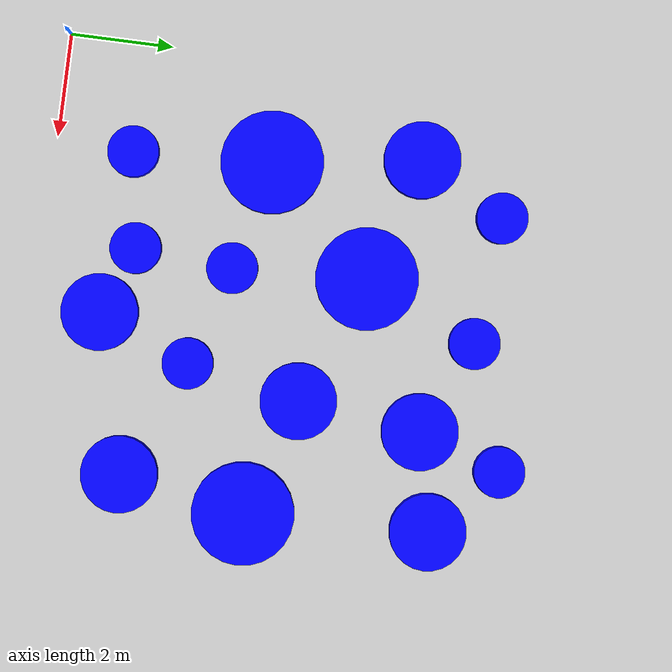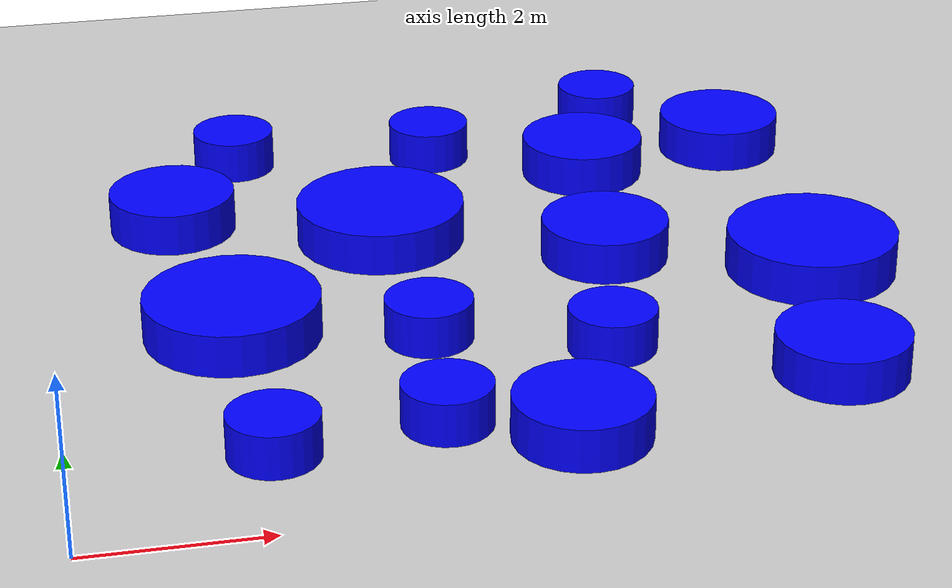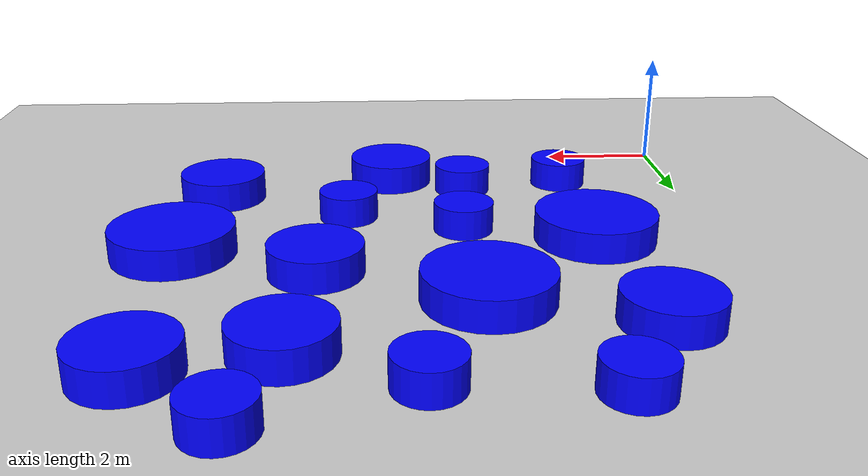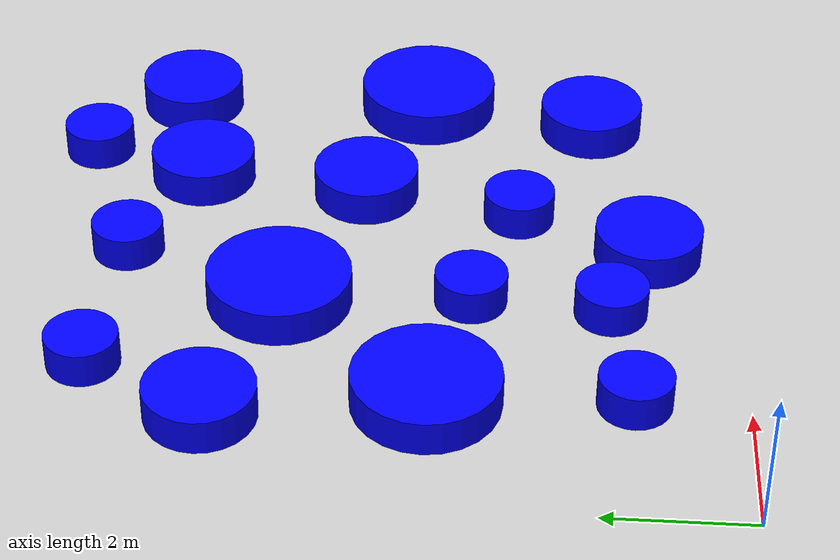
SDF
<sdf version="1.6">
 <world name="default">
  <light name="sun" type="directional">
   <pose>0 0 10 0 -0 0</pose>
   <diffuse>0.8 0.8 0.8 1</diffuse>
   <specular>0.2 0.2 0.2 1</specular>
   <attenuation>
    <range>1000</range>
    <constant>0.9</constant>
    <linear>0.01</linear>
    <quadratic>0.001</quadratic>
   </attenuation>
   <direction>-0.5 0.1 -0.9</direction>
  </light>
  <model name="ground_plane">
   <static>1</static>
   <link name="link">
    <collision name="collision">
     <geometry><plane><normal>0 0 1</normal><size>100 100</size></plane></geometry>
     <surface>
      <contact><collide_bitmask>65535</collide_bitmask></contact>
      <friction><ode><mu>100</mu><mu2>50</mu2></ode></friction>
     </surface>
    </collision>
    <visual name="visual">
     <cast_shadows>0</cast_shadows>
     <geometry><plane><normal>0 0 1</normal><size>100 100</size></plane></geometry>
     <material>
      <script><uri>file://media/materials/scripts/gazebo.material</uri><name>Gazebo/Grey</name></script>
     </material>
    </visual>
   </link>
  </model>
  <gravity>0 0 -9.8</gravity>
  <magnetic_field>6e-06 2.3e-05 -4.2e-05</magnetic_field>
  <atmosphere type="adiabatic"/>
  <physics name="default_physics" default="0" type="ode">
   <max_step_size>0.001</max_step_size>
   <real_time_factor>1</real_time_factor>
   <real_time_update_rate>1000</real_time_update_rate>
  </physics>
  <scene><ambient>0.4 0.4 0.4 1</ambient><background>0.7 0.7 0.7 1</background><shadows>1</shadows></scene>
  <audio><device>default</device></audio>
  <spherical_coordinates>
   <surface_model>EARTH_WGS84</surface_model>
   <latitude_deg>0</latitude_deg>
   <longitude_deg>0</longitude_deg>
   <elevation>0</elevation>
   <heading_deg>0</heading_deg>
  </spherical_coordinates>
  <model name="kwn_obs100">
   <link name="link">
    <inertial>
     <mass>1</mass>
     <inertia><ixx>0.145833</ixx><ixy>0</ixy><ixz>0</ixz><iyy>0.145833</iyy><iyz>0</iyz><izz>0.125</izz></inertia>
    </inertial>
    <visual name="visual">
     <geometry><cylinder><radius>1</radius><length>0.5</length></cylinder></geometry>
     <material>
      <script><name>Gazebo/Grey</name><uri>file://media/materials/scripts/gazebo.material</uri></script>
      <shader type="vertex"><normal_map>__default__</normal_map></shader>
      <ambient>0 0 1 1</ambient>
      <diffuse>0.7 0.7 0.7 1</diffuse>
      <specular>0.01 0.01 0.01 1</specular>
      <emissive>0 0 0 1</emissive>
     </material>
     <pose>0 0 0.25 0 -0 0</pose>
    </visual>
    <collision name="collision">
     <pose>0 0 0.25 0 -0 0</pose>
     <geometry><cylinder><radius>1</radius><length>0.5</length></cylinder></geometry>
     <surface>
      <friction>
       <ode><mu>1</mu><mu2>1</mu2><fdir1>0 0 0</fdir1><slip1>0</slip1><slip2>0</slip2></ode>
       <torsional>
        <coefficient>1</coefficient>
        <patch_radius>0</patch_radius>
        <surface_radius>0</surface_radius>
        <use_patch_radius>1</use_patch_radius>
        <ode><slip>0</slip></ode>
       </torsional>
      </friction>
      <bounce><restitution_coefficient>0</restitution_coefficient><threshold>1e+06</threshold></bounce>
      <contact>
       <collide_without_contact>0</collide_without_contact>
       <collide_without_contact_bitmask>1</collide_without_contact_bitmask>
       <collide_bitmask>1</collide_bitmask>
       <ode>
        <soft_cfm>0</soft_cfm>
        <soft_erp>0.2</soft_erp>
        <kp>1e+13</kp>
        <kd>1</kd>
        <max_vel>0.01</max_vel>
        <min_depth>0</min_depth>
       </ode>
       <bullet>
        <split_impulse>1</split_impulse>
        <split_impulse_penetration_threshold>-0.01</split_impulse_penetration_threshold>
        <soft_cfm>0</soft_cfm>
        <soft_erp>0.2</soft_erp>
        <kp>1e+13</kp>
        <kd>1</kd>
       </bullet>
      </contact>
     </surface>
    </collision>
   </link>
   <static>1</static>
   <pose>1.98249 4.19894 0 0 -0 0</pose>
  </model>
  <model name="kwn_obs75">
   <link name="link">
    <inertial>
     <mass>1</mass>
     <inertia><ixx>0.145833</ixx><ixy>0</ixy><ixz>0</ixz><iyy>0.145833</iyy><iyz>0</iyz><izz>0.125</izz></inertia>
    </inertial>
    <visual name="visual">
     <geometry><cylinder><radius>0.75</radius><length>0.5</length></cylinder></geometry>
     <material>
      <script><name>Gazebo/Grey</name><uri>file://media/materials/scripts/gazebo.material</uri></script>
      <shader type="vertex"><normal_map>__default__</normal_map></shader>
      <ambient>0 0 1 1</ambient>
      <diffuse>0.7 0.7 0.7 1</diffuse>
      <specular>0.01 0.01 0.01 1</specular>
      <emissive>0 0 0 1</emissive>
     </material>
     <pose>0 0 0.25 0 -0 0</pose>
    </visual>
    <collision name="collision">
     <pose>0 0 0.25 0 -0 0</pose>
     <geometry><cylinder><radius>0.75</radius><length>0.5</length></cylinder></geometry>
     <surface>
      <friction>
       <ode><mu>1</mu><mu2>1</mu2><fdir1>0 0 0</fdir1><slip1>0</slip1><slip2>0</slip2></ode>
       <torsional>
        <coefficient>1</coefficient>
        <patch_radius>0</patch_radius>
        <surface_radius>0</surface_radius>
        <use_patch_radius>1</use_patch_radius>
        <ode><slip>0</slip></ode>
       </torsional>
      </friction>
      <bounce><restitution_coefficient>0</restitution_coefficient><threshold>1e+06</threshold></bounce>
      <contact>
       <collide_without_contact>0</collide_without_contact>
       <collide_without_contact_bitmask>1</collide_without_contact_bitmask>
       <collide_bitmask>1</collide_bitmask>
       <ode>
        <soft_cfm>0</soft_cfm>
        <soft_erp>0.2</soft_erp>
        <kp>1e+13</kp>
        <kd>1</kd>
        <max_vel>0.01</max_vel>
        <min_depth>0</min_depth>
       </ode>
       <bullet>
        <split_impulse>1</split_impulse>
        <split_impulse_penetration_threshold>-0.01</split_impulse_penetration_threshold>
        <soft_cfm>0</soft_cfm>
        <soft_erp>0.2</soft_erp>
        <kp>1e+13</kp>
        <kd>1</kd>
       </bullet>
      </contact>
     </surface>
    </collision>
   </link>
   <static>1</static>
   <pose>5.28426 1.26231 0 0 -0 0</pose>
  </model>
  <model name="kwn_obs50">
   <link name="link">
    <inertial>
     <mass>1</mass>
     <inertia><ixx>0.145833</ixx><ixy>0</ixy><ixz>0</ixz><iyy>0.145833</iyy><iyz>0</iyz><izz>0.125</izz></inertia>
    </inertial>
    <visual name="visual">
     <geometry><cylinder><radius>0.5</radius><length>0.5</length></cylinder></geometry>
     <material>
      <script><name>Gazebo/Grey</name><uri>file://media/materials/scripts/gazebo.material</uri></script>
      <shader type="vertex"><normal_map>__default__</normal_map></shader>
      <ambient>0 0 1 1</ambient>
      <diffuse>0.7 0.7 0.7 1</diffuse>
      <specular>0.01 0.01 0.01 1</specular>
      <emissive>0 0 0 1</emissive>
     </material>
     <pose>0 0 0.25 0 -0 0</pose>
    </visual>
    <collision name="collision">
     <pose>0 0 0.25 0 -0 0</pose>
     <geometry><cylinder><radius>0.5</radius><length>0.5</length></cylinder></geometry>
     <surface>
      <friction>
       <ode><mu>1</mu><mu2>1</mu2><fdir1>0 0 0</fdir1><slip1>0</slip1><slip2>0</slip2></ode>
       <torsional>
        <coefficient>1</coefficient>
        <patch_radius>0</patch_radius>
        <surface_radius>0</surface_radius>
        <use_patch_radius>1</use_patch_radius>
        <ode><slip>0</slip></ode>
       </torsional>
      </friction>
      <bounce><restitution_coefficient>0</restitution_coefficient><threshold>1e+06</threshold></bounce>
      <contact>
       <collide_without_contact>0</collide_without_contact>
       <collide_without_contact_bitmask>1</collide_without_contact_bitmask>
       <collide_bitmask>1</collide_bitmask>
       <ode>
        <soft_cfm>0</soft_cfm>
        <soft_erp>0.2</soft_erp>
        <kp>1e+13</kp>
        <kd>1</kd>
        <max_vel>0.01</max_vel>
        <min_depth>0</min_depth>
       </ode>
       <bullet>
        <split_impulse>1</split_impulse>
        <split_impulse_penetration_threshold>-0.01</split_impulse_penetration_threshold>
        <soft_cfm>0</soft_cfm>
        <soft_erp>0.2</soft_erp>
        <kp>1e+13</kp>
        <kd>1</kd>
       </bullet>
      </contact>
     </surface>
    </collision>
   </link>
   <static>1</static>
   <pose>2.12006 1.50872 0 0 -0 0</pose>
  </model>
  <model name="kwn_obs50_0">
   <link name="link">
    <inertial>
     <mass>1</mass>
     <inertia><ixx>0.145833</ixx><ixy>0</ixy><ixz>0</ixz><iyy>0.145833</iyy><iyz>0</iyz><izz>0.125</izz></inertia>
    </inertial>
    <visual name="visual">
     <geometry><cylinder><radius>0.5</radius><length>0.5</length></cylinder></geometry>
     <material>
      <script><name>Gazebo/Grey</name><uri>file://media/materials/scripts/gazebo.material</uri></script>
      <shader type="vertex"><normal_map>__default__</normal_map></shader>
      <ambient>0 0 1 1</ambient>
      <diffuse>0.7 0.7 0.7 1</diffuse>
      <specular>0.01 0.01 0.01 1</specular>
      <emissive>0 0 0 1</emissive>
     </material>
     <pose>0 0 0.25 0 -0 0</pose>
    </visual>
    <collision name="collision">
     <pose>0 0 0.25 0 -0 0</pose>
     <geometry><cylinder><radius>0.5</radius><length>0.5</length></cylinder></geometry>
     <surface>
      <friction>
       <ode><mu>1</mu><mu2>1</mu2><fdir1>0 0 0</fdir1><slip1>0</slip1><slip2>0</slip2></ode>
       <torsional>
        <coefficient>1</coefficient>
        <patch_radius>0</patch_radius>
        <surface_radius>0</surface_radius>
        <use_patch_radius>1</use_patch_radius>
        <ode><slip>0</slip></ode>
       </torsional>
      </friction>
      <bounce><restitution_coefficient>0</restitution_coefficient><threshold>1e+06</threshold></bounce>
      <contact>
       <collide_without_contact>0</collide_without_contact>
       <collide_without_contact_bitmask>1</collide_without_contact_bitmask>
       <collide_bitmask>1</collide_bitmask>
       <ode>
        <soft_cfm>0</soft_cfm>
        <soft_erp>0.2</soft_erp>
        <kp>1e+13</kp>
        <kd>1</kd>
        <max_vel>0.01</max_vel>
        <min_depth>0</min_depth>
       </ode>
       <bullet>
        <split_impulse>1</split_impulse>
        <split_impulse_penetration_threshold>-0.01</split_impulse_penetration_threshold>
        <soft_cfm>0</soft_cfm>
        <soft_erp>0.2</soft_erp>
        <kp>1e+13</kp>
        <kd>1</kd>
       </bullet>
      </contact>
     </surface>
    </collision>
   </link>
   <static>1</static>
   <pose>4.10978 3.69795 0 0 -0 0</pose>
  </model>
  <model name="kwn_obs75_0">
   <link name="link">
    <inertial>
     <mass>1</mass>
     <inertia><ixx>0.145833</ixx><ixy>0</ixy><ixz>0</ixz><iyy>0.145833</iyy><iyz>0</iyz><izz>0.125</izz></inertia>
    </inertial>
    <visual name="visual">
     <geometry><cylinder><radius>0.75</radius><length>0.5</length></cylinder></geometry>
     <material>
      <script><name>Gazebo/Grey</name><uri>file://media/materials/scripts/gazebo.material</uri></script>
      <shader type="vertex"><normal_map>__default__</normal_map></shader>
      <ambient>0 0 1 1</ambient>
      <diffuse>0.7 0.7 0.7 1</diffuse>
      <specular>0.01 0.01 0.01 1</specular>
      <emissive>0 0 0 1</emissive>
     </material>
     <pose>0 0 0.25 0 -0 0</pose>
    </visual>
    <collision name="collision">
     <pose>0 0 0.25 0 -0 0</pose>
     <geometry><cylinder><radius>0.75</radius><length>0.5</length></cylinder></geometry>
     <surface>
      <friction>
       <ode><mu>1</mu><mu2>1</mu2><fdir1>0 0 0</fdir1><slip1>0</slip1><slip2>0</slip2></ode>
       <torsional>
        <coefficient>1</coefficient>
        <patch_radius>0</patch_radius>
        <surface_radius>0</surface_radius>
        <use_patch_radius>1</use_patch_radius>
        <ode><slip>0</slip></ode>
       </torsional>
      </friction>
      <bounce><restitution_coefficient>0</restitution_coefficient><threshold>1e+06</threshold></bounce>
      <contact>
       <collide_without_contact>0</collide_without_contact>
       <collide_without_contact_bitmask>1</collide_without_contact_bitmask>
       <collide_bitmask>1</collide_bitmask>
       <ode>
        <soft_cfm>0</soft_cfm>
        <soft_erp>0.2</soft_erp>
        <kp>1e+13</kp>
        <kd>1</kd>
        <max_vel>0.01</max_vel>
        <min_depth>0</min_depth>
       </ode>
       <bullet>
        <split_impulse>1</split_impulse>
        <split_impulse_penetration_threshold>-0.01</split_impulse_penetration_threshold>
        <soft_cfm>0</soft_cfm>
        <soft_erp>0.2</soft_erp>
        <kp>1e+13</kp>
        <kd>1</kd>
       </bullet>
      </contact>
     </surface>
    </collision>
   </link>
   <static>1</static>
   <pose>1.56322 7.07568 0 0 -0 0</pose>
  </model>
  <model name="kwn_obs100_0">
   <link name="link">
    <inertial>
     <mass>1</mass>
     <inertia><ixx>0.145833</ixx><ixy>0</ixy><ixz>0</ixz><iyy>0.145833</iyy><iyz>0</iyz><izz>0.125</izz></inertia>
    </inertial>
    <visual name="visual">
     <geometry><cylinder><radius>1</radius><length>0.5</length></cylinder></geometry>
     <material>
      <script><name>Gazebo/Grey</name><uri>file://media/materials/scripts/gazebo.material</uri></script>
      <shader type="vertex"><normal_map>__default__</normal_map></shader>
      <ambient>0 0 1 1</ambient>
      <diffuse>0.7 0.7 0.7 1</diffuse>
      <specular>0.01 0.01 0.01 1</specular>
      <emissive>0 0 0 1</emissive>
     </material>
     <pose>0 0 0.25 0 -0 0</pose>
    </visual>
    <collision name="collision">
     <pose>0 0 0.25 0 -0 0</pose>
     <geometry><cylinder><radius>1</radius><length>0.5</length></cylinder></geometry>
     <surface>
      <friction>
       <ode><mu>1</mu><mu2>1</mu2><fdir1>0 0 0</fdir1><slip1>0</slip1><slip2>0</slip2></ode>
       <torsional>
        <coefficient>1</coefficient>
        <patch_radius>0</patch_radius>
        <surface_radius>0</surface_radius>
        <use_patch_radius>1</use_patch_radius>
        <ode><slip>0</slip></ode>
       </torsional>
      </friction>
      <bounce><restitution_coefficient>0</restitution_coefficient><threshold>1e+06</threshold></bounce>
      <contact>
       <collide_without_contact>0</collide_without_contact>
       <collide_without_contact_bitmask>1</collide_without_contact_bitmask>
       <collide_bitmask>1</collide_bitmask>
       <ode>
        <soft_cfm>0</soft_cfm>
        <soft_erp>0.2</soft_erp>
        <kp>1e+13</kp>
        <kd>1</kd>
        <max_vel>0.01</max_vel>
        <min_depth>0</min_depth>
       </ode>
       <bullet>
        <split_impulse>1</split_impulse>
        <split_impulse_penetration_threshold>-0.01</split_impulse_penetration_threshold>
        <soft_cfm>0</soft_cfm>
        <soft_erp>0.2</soft_erp>
        <kp>1e+13</kp>
        <kd>1</kd>
       </bullet>
      </contact>
     </surface>
    </collision>
   </link>
   <static>1</static>
   <pose>3.98051 6.30588 0 0 -0 0</pose>
  </model>
  <model name="kwn_obs50_1">
   <link name="link">
    <inertial>
     <mass>1</mass>
     <inertia><ixx>0.145833</ixx><ixy>0</ixy><ixz>0</ixz><iyy>0.145833</iyy><iyz>0</iyz><izz>0.125</izz></inertia>
    </inertial>
    <visual name="visual">
     <geometry><cylinder><radius>0.5</radius><length>0.5</length></cylinder></geometry>
     <material>
      <script><name>Gazebo/Grey</name><uri>file://media/materials/scripts/gazebo.material</uri></script>
      <shader type="vertex"><normal_map>__default__</normal_map></shader>
      <ambient>0 0 1 1</ambient>
      <diffuse>0.7 0.7 0.7 1</diffuse>
      <specular>0.01 0.01 0.01 1</specular>
      <emissive>0 0 0 1</emissive>
     </material>
     <pose>0 0 0.25 0 -0 0</pose>
    </visual>
    <collision name="collision">
     <pose>0 0 0.25 0 -0 0</pose>
     <geometry><cylinder><radius>0.5</radius><length>0.5</length></cylinder></geometry>
     <surface>
      <friction>
       <ode><mu>1</mu><mu2>1</mu2><fdir1>0 0 0</fdir1><slip1>0</slip1><slip2>0</slip2></ode>
       <torsional>
        <coefficient>1</coefficient>
        <patch_radius>0</patch_radius>
        <surface_radius>0</surface_radius>
        <use_patch_radius>1</use_patch_radius>
        <ode><slip>0</slip></ode>
       </torsional>
      </friction>
      <bounce><restitution_coefficient>0</restitution_coefficient><threshold>1e+06</threshold></bounce>
      <contact>
       <collide_without_contact>0</collide_without_contact>
       <collide_without_contact_bitmask>1</collide_without_contact_bitmask>
       <collide_bitmask>1</collide_bitmask>
       <ode>
        <soft_cfm>0</soft_cfm>
        <soft_erp>0.2</soft_erp>
        <kp>1e+13</kp>
        <kd>1</kd>
        <max_vel>0.01</max_vel>
        <min_depth>0</min_depth>
       </ode>
       <bullet>
        <split_impulse>1</split_impulse>
        <split_impulse_penetration_threshold>-0.01</split_impulse_penetration_threshold>
        <soft_cfm>0</soft_cfm>
        <soft_erp>0.2</soft_erp>
        <kp>1e+13</kp>
        <kd>1</kd>
       </bullet>
      </contact>
     </surface>
    </collision>
   </link>
   <static>1</static>
   <pose>6.04837 3.08082 0 0 -0 0</pose>
  </model>
  <model name="kwn_obs75_1">
   <link name="link">
    <inertial>
     <mass>1</mass>
     <inertia><ixx>0.145833</ixx><ixy>0</ixy><ixz>0</ixz><iyy>0.145833</iyy><iyz>0</iyz><izz>0.125</izz></inertia>
    </inertial>
    <visual name="visual">
     <geometry><cylinder><radius>0.75</radius><length>0.5</length></cylinder></geometry>
     <material>
      <script><name>Gazebo/Grey</name><uri>file://media/materials/scripts/gazebo.material</uri></script>
      <shader type="vertex"><normal_map>__default__</normal_map></shader>
      <ambient>0 0 1 1</ambient>
      <diffuse>0.7 0.7 0.7 1</diffuse>
      <specular>0.01 0.01 0.01 1</specular>
      <emissive>0 0 0 1</emissive>
     </material>
     <pose>0 0 0.25 0 -0 0</pose>
    </visual>
    <collision name="collision">
     <pose>0 0 0.25 0 -0 0</pose>
     <geometry><cylinder><radius>0.75</radius><length>0.5</length></cylinder></geometry>
     <surface>
      <friction>
       <ode><mu>1</mu><mu2>1</mu2><fdir1>0 0 0</fdir1><slip1>0</slip1><slip2>0</slip2></ode>
       <torsional>
        <coefficient>1</coefficient>
        <patch_radius>0</patch_radius>
        <surface_radius>0</surface_radius>
        <use_patch_radius>1</use_patch_radius>
        <ode><slip>0</slip></ode>
       </torsional>
      </friction>
      <bounce><restitution_coefficient>0</restitution_coefficient><threshold>1e+06</threshold></bounce>
      <contact>
       <collide_without_contact>0</collide_without_contact>
       <collide_without_contact_bitmask>1</collide_without_contact_bitmask>
       <collide_bitmask>1</collide_bitmask>
       <ode>
        <soft_cfm>0</soft_cfm>
        <soft_erp>0.2</soft_erp>
        <kp>1e+13</kp>
        <kd>1</kd>
        <max_vel>0.01</max_vel>
        <min_depth>0</min_depth>
       </ode>
       <bullet>
        <split_impulse>1</split_impulse>
        <split_impulse_penetration_threshold>-0.01</split_impulse_penetration_threshold>
        <soft_cfm>0</soft_cfm>
        <soft_erp>0.2</soft_erp>
        <kp>1e+13</kp>
        <kd>1</kd>
       </bullet>
      </contact>
     </surface>
    </collision>
   </link>
   <static>1</static>
   <pose>8.34809 2.04431 0 0 -0 0</pose>
  </model>
  <model name="kwn_obs50_2">
   <link name="link">
    <inertial>
     <mass>1</mass>
     <inertia><ixx>0.145833</ixx><ixy>0</ixy><ixz>0</ixz><iyy>0.145833</iyy><iyz>0</iyz><izz>0.125</izz></inertia>
    </inertial>
    <visual name="visual">
     <geometry><cylinder><radius>0.5</radius><length>0.5</length></cylinder></geometry>
     <material>
      <script><name>Gazebo/Grey</name><uri>file://media/materials/scripts/gazebo.material</uri></script>
      <shader type="vertex"><normal_map>__default__</normal_map></shader>
      <ambient>0 0 1 1</ambient>
      <diffuse>0.7 0.7 0.7 1</diffuse>
      <specular>0.01 0.01 0.01 1</specular>
      <emissive>0 0 0 1</emissive>
     </material>
     <pose>0 0 0.25 0 -0 0</pose>
    </visual>
    <collision name="collision">
     <pose>0 0 0.25 0 -0 0</pose>
     <geometry><cylinder><radius>0.5</radius><length>0.5</length></cylinder></geometry>
     <surface>
      <friction>
       <ode><mu>1</mu><mu2>1</mu2><fdir1>0 0 0</fdir1><slip1>0</slip1><slip2>0</slip2></ode>
       <torsional>
        <coefficient>1</coefficient>
        <patch_radius>0</patch_radius>
        <surface_radius>0</surface_radius>
        <use_patch_radius>1</use_patch_radius>
        <ode><slip>0</slip></ode>
       </torsional>
      </friction>
      <bounce><restitution_coefficient>0</restitution_coefficient><threshold>1e+06</threshold></bounce>
      <contact>
       <collide_without_contact>0</collide_without_contact>
       <collide_without_contact_bitmask>1</collide_without_contact_bitmask>
       <collide_bitmask>1</collide_bitmask>
       <ode>
        <soft_cfm>0</soft_cfm>
        <soft_erp>0.2</soft_erp>
        <kp>1e+13</kp>
        <kd>1</kd>
        <max_vel>0.01</max_vel>
        <min_depth>0</min_depth>
       </ode>
       <bullet>
        <split_impulse>1</split_impulse>
        <split_impulse_penetration_threshold>-0.01</split_impulse_penetration_threshold>
        <soft_cfm>0</soft_cfm>
        <soft_erp>0.2</soft_erp>
        <kp>1e+13</kp>
        <kd>1</kd>
       </bullet>
      </contact>
     </surface>
    </collision>
   </link>
   <static>1</static>
   <pose>2.47933 8.7523 0 0 -0 0</pose>
  </model>
  <model name="kwn_obs75_2">
   <link name="link">
    <inertial>
     <mass>1</mass>
     <inertia><ixx>0.145833</ixx><ixy>0</ixy><ixz>0</ixz><iyy>0.145833</iyy><iyz>0</iyz><izz>0.125</izz></inertia>
    </inertial>
    <visual name="visual">
     <geometry><cylinder><radius>0.75</radius><length>0.5</length></cylinder></geometry>
     <material>
      <script><name>Gazebo/Grey</name><uri>file://media/materials/scripts/gazebo.material</uri></script>
      <shader type="vertex"><normal_map>__default__</normal_map></shader>
      <ambient>0 0 1 1</ambient>
      <diffuse>0.7 0.7 0.7 1</diffuse>
      <specular>0.01 0.01 0.01 1</specular>
      <emissive>0 0 0 1</emissive>
     </material>
     <pose>0 0 0.25 0 -0 0</pose>
    </visual>
    <collision name="collision">
     <pose>0 0 0.25 0 -0 0</pose>
     <geometry><cylinder><radius>0.75</radius><length>0.5</length></cylinder></geometry>
     <surface>
      <friction>
       <ode><mu>1</mu><mu2>1</mu2><fdir1>0 0 0</fdir1><slip1>0</slip1><slip2>0</slip2></ode>
       <torsional>
        <coefficient>1</coefficient>
        <patch_radius>0</patch_radius>
        <surface_radius>0</surface_radius>
        <use_patch_radius>1</use_patch_radius>
        <ode><slip>0</slip></ode>
       </torsional>
      </friction>
      <bounce><restitution_coefficient>0</restitution_coefficient><threshold>1e+06</threshold></bounce>
      <contact>
       <collide_without_contact>0</collide_without_contact>
       <collide_without_contact_bitmask>1</collide_without_contact_bitmask>
       <collide_bitmask>1</collide_bitmask>
       <ode>
        <soft_cfm>0</soft_cfm>
        <soft_erp>0.2</soft_erp>
        <kp>1e+13</kp>
        <kd>1</kd>
        <max_vel>0.01</max_vel>
        <min_depth>0</min_depth>
       </ode>
       <bullet>
        <split_impulse>1</split_impulse>
        <split_impulse_penetration_threshold>-0.01</split_impulse_penetration_threshold>
        <soft_cfm>0</soft_cfm>
        <soft_erp>0.2</soft_erp>
        <kp>1e+13</kp>
        <kd>1</kd>
       </bullet>
      </contact>
     </surface>
    </collision>
   </link>
   <static>1</static>
   <pose>6.49634 5.29851 0 0 -0 0</pose>
  </model>
  <model name="kwn_obs100_1">
   <link name="link">
    <inertial>
     <mass>1</mass>
     <inertia><ixx>0.145833</ixx><ixy>0</ixy><ixz>0</ixz><iyy>0.145833</iyy><iyz>0</iyz><izz>0.125</izz></inertia>
    </inertial>
    <visual name="visual">
     <geometry><cylinder><radius>1</radius><length>0.5</length></cylinder></geometry>
     <material>
      <script><name>Gazebo/Grey</name><uri>file://media/materials/scripts/gazebo.material</uri></script>
      <shader type="vertex"><normal_map>__default__</normal_map></shader>
      <ambient>0 0 1 1</ambient>
      <diffuse>0.7 0.7 0.7 1</diffuse>
      <specular>0.01 0.01 0.01 1</specular>
      <emissive>0 0 0 1</emissive>
     </material>
     <pose>0 0 0.25 0 -0 0</pose>
    </visual>
    <collision name="collision">
     <pose>0 0 0.25 0 -0 0</pose>
     <geometry><cylinder><radius>1</radius><length>0.5</length></cylinder></geometry>
     <surface>
      <friction>
       <ode><mu>1</mu><mu2>1</mu2><fdir1>0 0 0</fdir1><slip1>0</slip1><slip2>0</slip2></ode>
       <torsional>
        <coefficient>1</coefficient>
        <patch_radius>0</patch_radius>
        <surface_radius>0</surface_radius>
        <use_patch_radius>1</use_patch_radius>
        <ode><slip>0</slip></ode>
       </torsional>
      </friction>
      <bounce><restitution_coefficient>0</restitution_coefficient><threshold>1e+06</threshold></bounce>
      <contact>
       <collide_without_contact>0</collide_without_contact>
       <collide_without_contact_bitmask>1</collide_without_contact_bitmask>
       <collide_bitmask>1</collide_bitmask>
       <ode>
        <soft_cfm>0</soft_cfm>
        <soft_erp>0.2</soft_erp>
        <kp>1e+13</kp>
        <kd>1</kd>
        <max_vel>0.01</max_vel>
        <min_depth>0</min_depth>
       </ode>
       <bullet>
        <split_impulse>1</split_impulse>
        <split_impulse_penetration_threshold>-0.01</split_impulse_penetration_threshold>
        <soft_cfm>0</soft_cfm>
        <soft_erp>0.2</soft_erp>
        <kp>1e+13</kp>
        <kd>1</kd>
       </bullet>
      </contact>
     </surface>
    </collision>
   </link>
   <static>1</static>
   <pose>8.79246 4.51561 0 0 -0 0</pose>
  </model>
  <model name="kwn_obs50_3">
   <link name="link">
    <inertial>
     <mass>1</mass>
     <inertia><ixx>0.145833</ixx><ixy>0</ixy><ixz>0</ixz><iyy>0.145833</iyy><iyz>0</iyz><izz>0.125</izz></inertia>
    </inertial>
    <visual name="visual">
     <geometry><cylinder><radius>0.5</radius><length>0.5</length></cylinder></geometry>
     <material>
      <script><name>Gazebo/Grey</name><uri>file://media/materials/scripts/gazebo.material</uri></script>
      <shader type="vertex"><normal_map>__default__</normal_map></shader>
      <ambient>0 0 1 1</ambient>
      <diffuse>0.7 0.7 0.7 1</diffuse>
      <specular>0.01 0.01 0.01 1</specular>
      <emissive>0 0 0 1</emissive>
     </material>
     <pose>0 0 0.25 0 -0 0</pose>
    </visual>
    <collision name="collision">
     <pose>0 0 0.25 0 -0 0</pose>
     <geometry><cylinder><radius>0.5</radius><length>0.5</length></cylinder></geometry>
     <surface>
      <friction>
       <ode><mu>1</mu><mu2>1</mu2><fdir1>0 0 0</fdir1><slip1>0</slip1><slip2>0</slip2></ode>
       <torsional>
        <coefficient>1</coefficient>
        <patch_radius>0</patch_radius>
        <surface_radius>0</surface_radius>
        <use_patch_radius>1</use_patch_radius>
        <ode><slip>0</slip></ode>
       </torsional>
      </friction>
      <bounce><restitution_coefficient>0</restitution_coefficient><threshold>1e+06</threshold></bounce>
      <contact>
       <collide_without_contact>0</collide_without_contact>
       <collide_without_contact_bitmask>1</collide_without_contact_bitmask>
       <collide_bitmask>1</collide_bitmask>
       <ode>
        <soft_cfm>0</soft_cfm>
        <soft_erp>0.2</soft_erp>
        <kp>1e+13</kp>
        <kd>1</kd>
        <max_vel>0.01</max_vel>
        <min_depth>0</min_depth>
       </ode>
       <bullet>
        <split_impulse>1</split_impulse>
        <split_impulse_penetration_threshold>-0.01</split_impulse_penetration_threshold>
        <soft_cfm>0</soft_cfm>
        <soft_erp>0.2</soft_erp>
        <kp>1e+13</kp>
        <kd>1</kd>
       </bullet>
      </contact>
     </surface>
    </collision>
   </link>
   <static>1</static>
   <pose>4.95547 8.53385 0 0 -0 0</pose>
  </model>
  <model name="kwn_obs75_3">
   <link name="link">
    <inertial>
     <mass>1</mass>
     <inertia><ixx>0.145833</ixx><ixy>0</ixy><ixz>0</ixz><iyy>0.145833</iyy><iyz>0</iyz><izz>0.125</izz></inertia>
    </inertial>
    <visual name="visual">
     <geometry><cylinder><radius>0.75</radius><length>0.5</length></cylinder></geometry>
     <material>
      <script><name>Gazebo/Grey</name><uri>file://media/materials/scripts/gazebo.material</uri></script>
      <shader type="vertex"><normal_map>__default__</normal_map></shader>
      <ambient>0 0 1 1</ambient>
      <diffuse>0.7 0.7 0.7 1</diffuse>
      <specular>0.01 0.01 0.01 1</specular>
      <emissive>0 0 0 1</emissive>
     </material>
     <pose>0 0 0.25 0 -0 0</pose>
    </visual>
    <collision name="collision">
     <pose>0 0 0.25 0 -0 0</pose>
     <geometry><cylinder><radius>0.75</radius><length>0.5</length></cylinder></geometry>
     <surface>
      <friction>
       <ode><mu>1</mu><mu2>1</mu2><fdir1>0 0 0</fdir1><slip1>0</slip1><slip2>0</slip2></ode>
       <torsional>
        <coefficient>1</coefficient>
        <patch_radius>0</patch_radius>
        <surface_radius>0</surface_radius>
        <use_patch_radius>1</use_patch_radius>
        <ode><slip>0</slip></ode>
       </torsional>
      </friction>
      <bounce><restitution_coefficient>0</restitution_coefficient><threshold>1e+06</threshold></bounce>
      <contact>
       <collide_without_contact>0</collide_without_contact>
       <collide_without_contact_bitmask>1</collide_without_contact_bitmask>
       <collide_bitmask>1</collide_bitmask>
       <ode>
        <soft_cfm>0</soft_cfm>
        <soft_erp>0.2</soft_erp>
        <kp>1e+13</kp>
        <kd>1</kd>
        <max_vel>0.01</max_vel>
        <min_depth>0</min_depth>
       </ode>
       <bullet>
        <split_impulse>1</split_impulse>
        <split_impulse_penetration_threshold>-0.01</split_impulse_penetration_threshold>
        <soft_cfm>0</soft_cfm>
        <soft_erp>0.2</soft_erp>
        <kp>1e+13</kp>
        <kd>1</kd>
       </bullet>
      </contact>
     </surface>
    </collision>
   </link>
   <static>1</static>
   <pose>6.78295 7.70513 0 0 -0 0</pose>
  </model>
  <model name="kwn_obs50_4">
   <link name="link">
    <inertial>
     <mass>1</mass>
     <inertia><ixx>0.145833</ixx><ixy>0</ixy><ixz>0</ixz><iyy>0.145833</iyy><iyz>0</iyz><izz>0.125</izz></inertia>
    </inertial>
    <visual name="visual">
     <geometry><cylinder><radius>0.5</radius><length>0.5</length></cylinder></geometry>
     <material>
      <script><name>Gazebo/Grey</name><uri>file://media/materials/scripts/gazebo.material</uri></script>
      <shader type="vertex"><normal_map>__default__</normal_map></shader>
      <ambient>0 0 1 1</ambient>
      <diffuse>0.7 0.7 0.7 1</diffuse>
      <specular>0.01 0.01 0.01 1</specular>
      <emissive>0 0 0 1</emissive>
     </material>
     <pose>0 0 0.25 0 -0 0</pose>
    </visual>
    <collision name="collision">
     <pose>0 0 0.25 0 -0 0</pose>
     <geometry><cylinder><radius>0.5</radius><length>0.5</length></cylinder></geometry>
     <surface>
      <friction>
       <ode><mu>1</mu><mu2>1</mu2><fdir1>0 0 0</fdir1><slip1>0</slip1><slip2>0</slip2></ode>
       <torsional>
        <coefficient>1</coefficient>
        <patch_radius>0</patch_radius>
        <surface_radius>0</surface_radius>
        <use_patch_radius>1</use_patch_radius>
        <ode><slip>0</slip></ode>
       </torsional>
      </friction>
      <bounce><restitution_coefficient>0</restitution_coefficient><threshold>1e+06</threshold></bounce>
      <contact>
       <collide_without_contact>0</collide_without_contact>
       <collide_without_contact_bitmask>1</collide_without_contact_bitmask>
       <collide_bitmask>1</collide_bitmask>
       <ode>
        <soft_cfm>0</soft_cfm>
        <soft_erp>0.2</soft_erp>
        <kp>1e+13</kp>
        <kd>1</kd>
        <max_vel>0.01</max_vel>
        <min_depth>0</min_depth>
       </ode>
       <bullet>
        <split_impulse>1</split_impulse>
        <split_impulse_penetration_threshold>-0.01</split_impulse_penetration_threshold>
        <soft_cfm>0</soft_cfm>
        <soft_erp>0.2</soft_erp>
        <kp>1e+13</kp>
        <kd>1</kd>
       </bullet>
      </contact>
     </surface>
    </collision>
   </link>
   <static>1</static>
   <pose>7.35462 9.32854 0 0 -0 0</pose>
  </model>
  <model name="kwn_obs75_4">
   <link name="link">
    <inertial>
     <mass>1</mass>
     <inertia><ixx>0.145833</ixx><ixy>0</ixy><ixz>0</ixz><iyy>0.145833</iyy><iyz>0</iyz><izz>0.125</izz></inertia>
    </inertial>
    <visual name="visual">
     <geometry><cylinder><radius>0.75</radius><length>0.5</length></cylinder></geometry>
     <material>
      <script><name>Gazebo/Grey</name><uri>file://media/materials/scripts/gazebo.material</uri></script>
      <shader type="vertex"><normal_map>__default__</normal_map></shader>
      <ambient>0 0 1 1</ambient>
      <diffuse>0.7 0.7 0.7 1</diffuse>
      <specular>0.01 0.01 0.01 1</specular>
      <emissive>0 0 0 1</emissive>
     </material>
     <pose>0 0 0.25 0 -0 0</pose>
    </visual>
    <collision name="collision">
     <pose>0 0 0.25 0 -0 0</pose>
     <geometry><cylinder><radius>0.75</radius><length>0.5</length></cylinder></geometry>
     <surface>
      <friction>
       <ode><mu>1</mu><mu2>1</mu2><fdir1>0 0 0</fdir1><slip1>0</slip1><slip2>0</slip2></ode>
       <torsional>
        <coefficient>1</coefficient>
        <patch_radius>0</patch_radius>
        <surface_radius>0</surface_radius>
        <use_patch_radius>1</use_patch_radius>
        <ode><slip>0</slip></ode>
       </torsional>
      </friction>
      <bounce><restitution_coefficient>0</restitution_coefficient><threshold>1e+06</threshold></bounce>
      <contact>
       <collide_without_contact>0</collide_without_contact>
       <collide_without_contact_bitmask>1</collide_without_contact_bitmask>
       <collide_bitmask>1</collide_bitmask>
       <ode>
        <soft_cfm>0</soft_cfm>
        <soft_erp>0.2</soft_erp>
        <kp>1e+13</kp>
        <kd>1</kd>
        <max_vel>0.01</max_vel>
        <min_depth>0</min_depth>
       </ode>
       <bullet>
        <split_impulse>1</split_impulse>
        <split_impulse_penetration_threshold>-0.01</split_impulse_penetration_threshold>
        <soft_cfm>0</soft_cfm>
        <soft_erp>0.2</soft_erp>
        <kp>1e+13</kp>
        <kd>1</kd>
       </bullet>
      </contact>
     </surface>
    </collision>
   </link>
   <static>1</static>
   <pose>8.68232 8.10634 0 0 -0 0</pose>
  </model>
  <model name="kwn_obs50_5">
   <link name="link">
    <inertial>
     <mass>1</mass>
     <inertia><ixx>0.145833</ixx><ixy>0</ixy><ixz>0</ixz><iyy>0.145833</iyy><iyz>0</iyz><izz>0.125</izz></inertia>
    </inertial>
    <visual name="visual">
     <geometry><cylinder><radius>0.5</radius><length>0.5</length></cylinder></geometry>
     <material>
      <script><name>Gazebo/Grey</name><uri>file://media/materials/scripts/gazebo.material</uri></script>
      <shader type="vertex"><normal_map>__default__</normal_map></shader>
      <ambient>0 0 1 1</ambient>
      <diffuse>0.7 0.7 0.7 1</diffuse>
      <specular>0.01 0.01 0.01 1</specular>
      <emissive>0 0 0 1</emissive>
     </material>
     <pose>0 0 0.25 0 -0 0</pose>
    </visual>
    <collision name="collision">
     <pose>0 0 0.25 0 -0 0</pose>
     <geometry><cylinder><radius>0.5</radius><length>0.5</length></cylinder></geometry>
     <surface>
      <friction>
       <ode><mu>1</mu><mu2>1</mu2><fdir1>0 0 0</fdir1><slip1>0</slip1><slip2>0</slip2></ode>
       <torsional>
        <coefficient>1</coefficient>
        <patch_radius>0</patch_radius>
        <surface_radius>0</surface_radius>
        <use_patch_radius>1</use_patch_radius>
        <ode><slip>0</slip></ode>
       </torsional>
      </friction>
      <bounce><restitution_coefficient>0</restitution_coefficient><threshold>1e+06</threshold></bounce>
      <contact>
       <collide_without_contact>0</collide_without_contact>
       <collide_without_contact_bitmask>1</collide_without_contact_bitmask>
       <collide_bitmask>1</collide_bitmask>
       <ode>
        <soft_cfm>0</soft_cfm>
        <soft_erp>0.2</soft_erp>
        <kp>1e+13</kp>
        <kd>1</kd>
        <max_vel>0.01</max_vel>
        <min_depth>0</min_depth>
       </ode>
       <bullet>
        <split_impulse>1</split_impulse>
        <split_impulse_penetration_threshold>-0.01</split_impulse_penetration_threshold>
        <soft_cfm>0</soft_cfm>
        <soft_erp>0.2</soft_erp>
        <kp>1e+13</kp>
        <kd>1</kd>
       </bullet>
      </contact>
     </surface>
    </collision>
   </link>
   <static>1</static>
   <pose>3.96761 1.79336 0 0 -0 0</pose>
  </model>
 </world>
</sdf>
